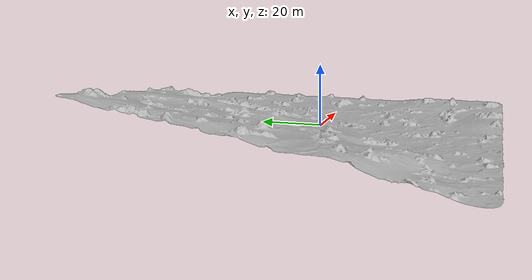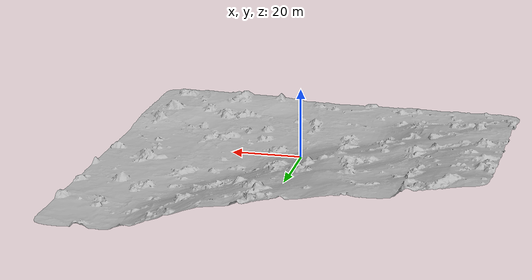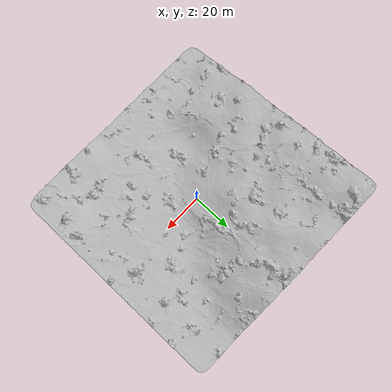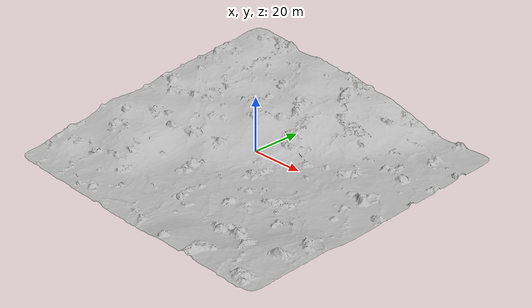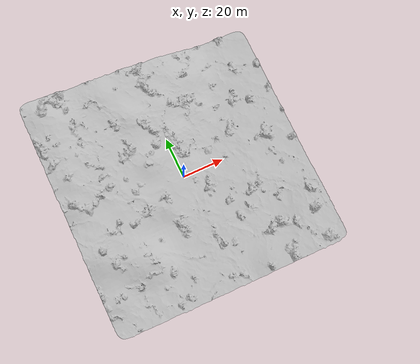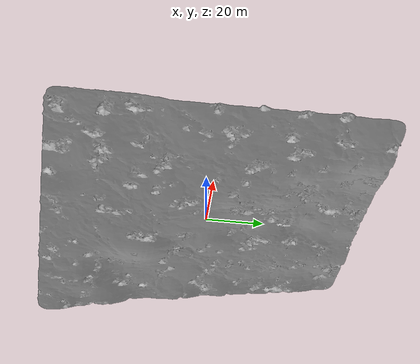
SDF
<?xml version="1.0" ?>
<sdf version="1.6">
  <model name="seabed">
    <static>true</static>
    <link name="seabed_link">

      <visual name="visual">
        <pose>0 0 0 1.5708 0 0</pose>
        <geometry>
          <mesh>
            <uri>model://seabed/meshes/seabed_visual.obj</uri>
            <scale>2 2 2</scale>
          </mesh>
        </geometry>
        <material>
          <script>
            <uri>model://seabed/materials/scripts</uri>
            <uri>model://seabed/materials/textures</uri>
            <name>Seabed/Diffuse</name>
          </script>
        </material>
      </visual>

      <collision name="collision">
        <pose>0 0 0 1.5708 0 0</pose>
        <geometry>
          <mesh>
            <uri>model://seabed/meshes/seabed_visual.obj</uri>
            <scale>2 2 2</scale>
          </mesh>
        </geometry>
      </collision>

    </link>
  </model>
</sdf>
